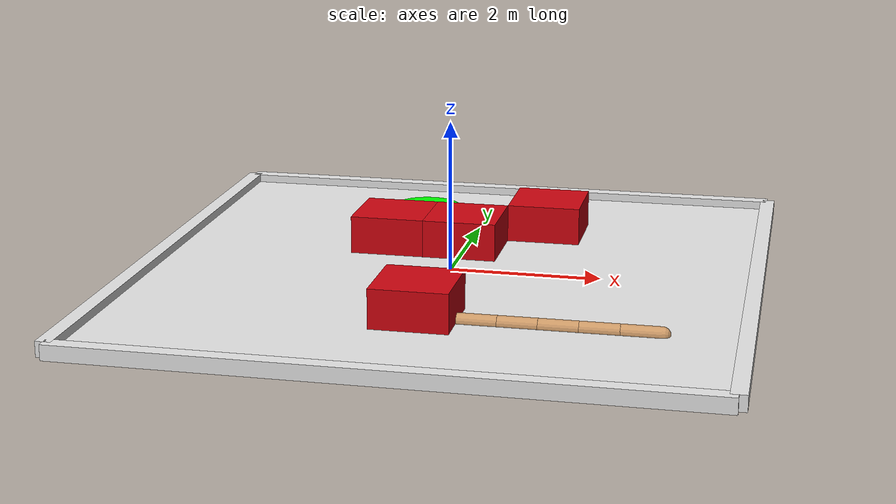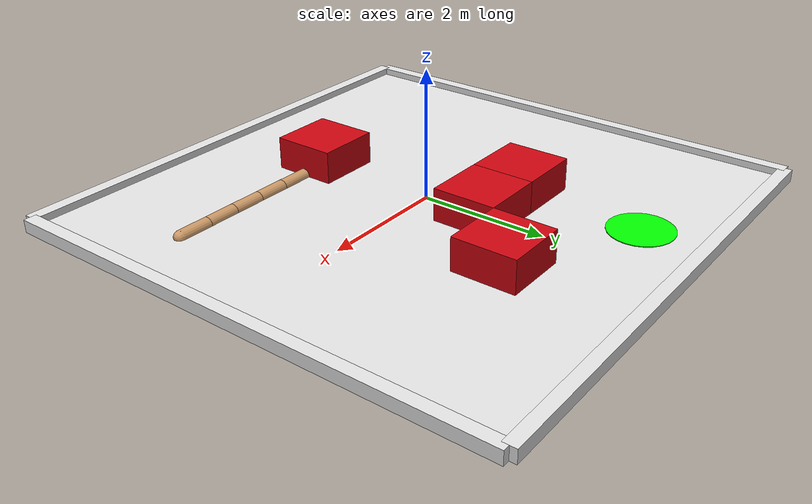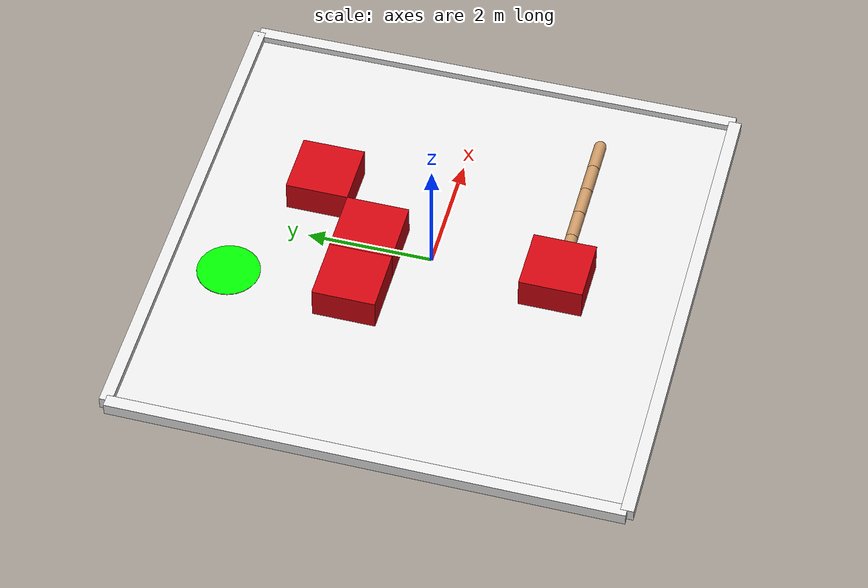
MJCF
<mujoco model="snake">
	<compiler inertiafromgeom="true" angle="degree" coordinate="local" />
  	<custom>
    		<numeric name="frame_skip" data="50" />
  	</custom>
  	<option timestep="0.001" density="4000" viscosity="0.1" collision="predefined" integrator="Euler" iterations="1000">
    		<flag warmstart="disable" />
  	</option>
  	<default>
    		<geom contype='1' conaffinity='1' condim='1' rgba='0.8 0.6 .4 1' />
 	</default>

	<asset>
		<texture name="texgeom" type="cube" builtin="flat" mark="cross" width="127" height="1278" rgb1="0.8 0.6 0.4" rgb2="0.8 0.6 0.4" markrgb="1 1 1" random="0.01" />
		<material name='geom' texture="texgeom" texuniform="true" />
	</asset>

	<worldbody>
		<light diffuse=".2 .2 .2" dir="0 0 -1" pos="0 0 2" />
		<!--light cutoff="100" diffuse="1 1 1" dir="-0 0 -1.3" directional="true" exponent="1" pos="0 0 1.3" specular=".1 .1 .1"/-->
		<geom conaffinity="1" contype="1" pos="0 0 0" size="4 4 0.1" rgba="0.9 0.9 0.9 1" type="plane" />
		<body name="torso" pos="2 -2 0">
			<geom name="torso" type="capsule" fromto="1.0 0 0 0.5 0 0" size="0.1" density="1000" />
      			<joint pos="0 0 0" type="slide" name="slider1" axis="1 0 0" />
      			<joint pos="0 0 0" type="slide" name="slider2" axis="0 1 0" />
      			<joint name="rot" type="hinge" pos="0 0 0" axis="0 0 1" />
      			<body name="mid" pos="0.5 0 0">
        			<geom name="mid" type="capsule" fromto="0 0 0 -0.5 0 0" size="0.1" density="1000" />
        			<joint name="rot2" type="hinge" pos="0 0 0" axis="0 0 1" range="-100 100" limited="true" />
        			<body name="back" pos="-0.5 0 0">
          				<geom name="back" type="capsule" fromto="0 0 0 -0.5 0 0" size="0.1" density="1000" />
          				<joint name="rot3" type="hinge" pos="0 0 0" axis="0 0 1" range="-100 100" limited="true" />
            				<body name="back2" pos="-0.5 0 0">
                				<geom name="back2" type="capsule" fromto="0 0 0 -0.5 0 0" size="0.1" density="1000" />
                				<joint name="rot4" type="hinge" pos="0 0 0" axis="0 0 1" range="-100 100" limited="true" />
                				<body name="back3" pos="-0.5 0 0">
                    					<geom name="back3" type="capsule" fromto="0 0 0 -0.5 0 0" size="0.1" density="1000" />
                    					<joint name="rot5" type="hinge" pos="0 0 0" axis="0 0 1" range="-100 100" limited="true" />
                    					<body name="back4" pos="-0.5 0 0">
                        					<geom name="back4" type="capsule" fromto="0 0 0 -0.5 0 0" size="0.1" density="1000" />
                        					<joint name="rot6" type="hinge" pos="0 0 0" axis="0 0 1" range="-100 100" limited="true" />
                    					</body>
                				</body>
            				</body>
        			</body>
      			</body>
    		</body>

		<geom pos="0 4 0" conaffinity="1" rgba="0.9 0.9 0.9 1" size="4 0.1 0.1" type="box"/>
    		<geom pos="0 -4 0" conaffinity="1" rgba="0.9 0.9 0.9 1" size="4 0.1 0.1" type="box"/>
    		<geom pos="4 0 0" conaffinity="1" rgba="0.9 0.9 0.9 1" size="0.1 4 0.1" type="box"/>
		<geom pos="-4 0 0" conaffinity="1" rgba="0.9 0.9 0.9 1" size="0.1 4 0.1" type="box"/>

		<body name="obstacle_1" pos="0 1 0 ">
			<geom conaffinity="1" contype="1" name="obstacle_1" pos="0 0 0" rgba="0.81 0.02 0.06 1" size=".5 .5 .5" type="box"/>
			<!--geom conaffinity="1" contype="1" name="obstacle_1" pos="0 0 0.3" rgba="1 0 0 1" size="0.5" type="sphere"/-->
		</body>

		<body name="obstacle_2" pos="-1 1 0 ">
			<geom conaffinity="1" contype="1" name="obstacle_2" pos="0 0 0" rgba="0.81 0.02 0.06 1" size=".5 .5 .5" type="box"/>
			<!--geom conaffinity="1" contype="1" name="obstacle_2" pos="0 0 0.2" rgba="1 0 0 1" size="0.3" type="sphere"/-->
		</body>

		<body name="obstacle_3" pos="0 -2 0 ">
			<geom conaffinity="1" contype="1" name="obstacle_3" pos="0 0 0" rgba="0.81 0.02 0.06 1" size=".5 .5 .5" type="box"/>
			<!--geom conaffinity="1" contype="1" name="obstacle_3" pos="0 0 0.3" rgba="1 0 0 1" size="0.5" type="sphere"/-->
		</body>

		<body name="obstacle_4" pos="1 2 0 ">
			<geom conaffinity="1" contype="1" name="obstacle_4" pos="0 0 0" rgba="0.81 0.02 0.06 1" size=".5 .5 .5" type="box"/>
			<!--geom conaffinity="1" contype="1" name="obstacle_4" pos="0 0 0.3" rgba="1 0 0 1" size="0.5" type="sphere"/-->
		</body>

		<body name="goal" pos = "-1 3 0">
			<geom conaffinity="0" contype="0" density="0.00001" rgba="0 1 0 1" size="0.5 0.005 0.2" type="cylinder"/>
		</body>

	</worldbody>

	<actuator>
    		<motor joint="rot2" ctrllimited="true" ctrlrange="-50 50" />
    		<motor joint="rot3" ctrllimited="true" ctrlrange="-50 50" />
    		<motor joint="rot4" ctrllimited="true" ctrlrange="-50 50" />
    		<motor joint="rot5" ctrllimited="true" ctrlrange="-50 50" />
    		<motor joint="rot6" ctrllimited="true" ctrlrange="-50 50" />
  	</actuator>
</mujoco>
